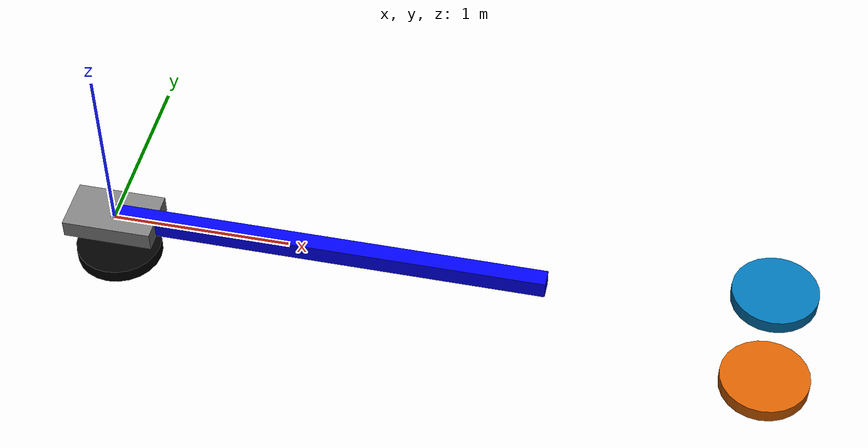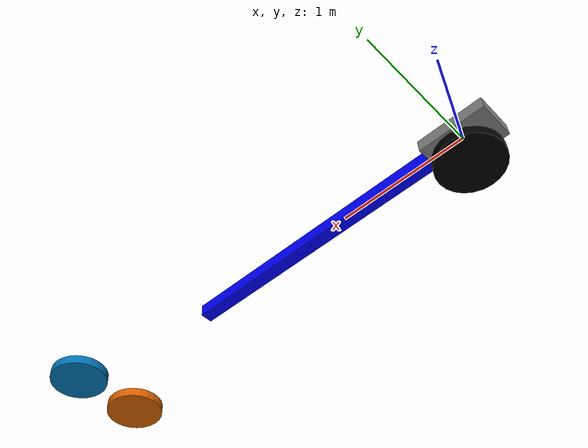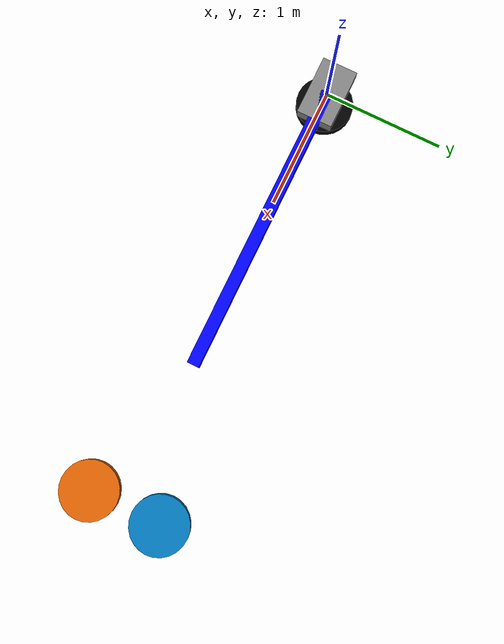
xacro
<?xml version="1.0"?>
<robot name="trike" xmlns:xacro="http://www.ros.org/wiki/xacro">
  <!-- Parameters -->
  <xacro:property name="wheel_radius" value="0.24"/>  <!-- 19-inch diameter -->
  <xacro:property name="wheel_width" value="0.076"/>  <!-- 3-inch width -->
  <xacro:property name="frame_length" value="2.44"/>  <!-- 8 feet -->
  <xacro:property name="frame_width" value="0.61"/>  <!-- 2 feet -->
  <xacro:property name="wheelbase" value="1.22"/>  <!-- 4 feet -->
  <xacro:property name="steering_angle_max" value="0.96"/>  <!-- 55 degrees in radians -->

  <!-- Base link (reference point) -->
  <link name="base_link">
    <visual>
      <geometry>
        <box size="0.5 0.3 0.1"/>
      </geometry>
      <material name="gray">
        <color rgba="0.5 0.5 0.5 1.0"/>
      </material>
    </visual>
  </link>

  <!-- rear wheel -->
  <link name="rear_wheel">
    <visual>
      <geometry>
        <cylinder radius="${wheel_radius}" length="${wheel_width}"/>
      </geometry>
      <material name="black">
        <color rgba="0.0 0.0 0.0 1.0"/>
      </material>
    </visual>
  </link>
  <joint name="rear_wheel_joint" type="fixed">
    <parent link="base_link"/>
    <child link="rear_wheel"/>
    <origin xyz="0 0 -${wheel_radius}"/>
  </joint>

    <!-- Front Frame (Extending to Steering) -->
  <link name="front_frame">
    <visual>
      <geometry>
        <box size="${frame_length} 0.1 0.1"/>
      </geometry>
      <material name="blue">
        <color rgba="0.0 0.0 1.0 1.0"/>
      </material>
    </visual>
  </link>
  <joint name="frame_joint" type="fixed">
    <parent link="base_link"/>
    <child link="front_frame"/>
    <origin xyz="${wheelbase} 0 0"/>
  </joint>

  <!-- Steering Mechanism -->
  <link name="steering_bar"/>
  <joint name="steering_joint" type="revolute">
    <parent link="front_frame"/>
    <child link="steering_bar"/>
    <origin xyz="${wheelbase} 0 0.1"/>
    <axis xyz="0 0 1"/>
    <limit lower="-${steering_angle_max}" upper="${steering_angle_max}" effort="1.0" velocity="1.0"/>
  </joint>

  <!-- Front Wheels -->
  <link name="front_left_wheel">
    <visual>
      <geometry>
        <cylinder radius="${wheel_radius}" length="${wheel_width}"/>
      </geometry>
    </visual>
  </link>
  <link name="front_right_wheel">
    <visual>
      <geometry>
        <cylinder radius="${wheel_radius}" length="${wheel_width}"/>
      </geometry>
    </visual>
  </link>

  <!-- Front Wheel Joints (Connected to Steering Bar) -->
  <joint name="front_left_wheel_joint" type="revolute">
    <parent link="steering_bar"/>
    <child link="front_left_wheel"/>
    <origin xyz="${wheelbase} ${frame_width / 2} -${wheel_radius}"/>
    <axis xyz="0 1 0"/>
    <limit effort="10.0" lower="-1.57" upper="1.57" velocity="1.0"/>
  </joint>

  <joint name="front_right_wheel_joint" type="revolute">
    <parent link="steering_bar"/>
    <child link="front_right_wheel"/>
    <origin xyz="${wheelbase} -${frame_width / 2} -${wheel_radius}"/>
    <axis xyz="0 1 0"/>
    <limit effort="10.0" lower="-1.57" upper="1.57" velocity="1.0"/>
  </joint>

</robot>
